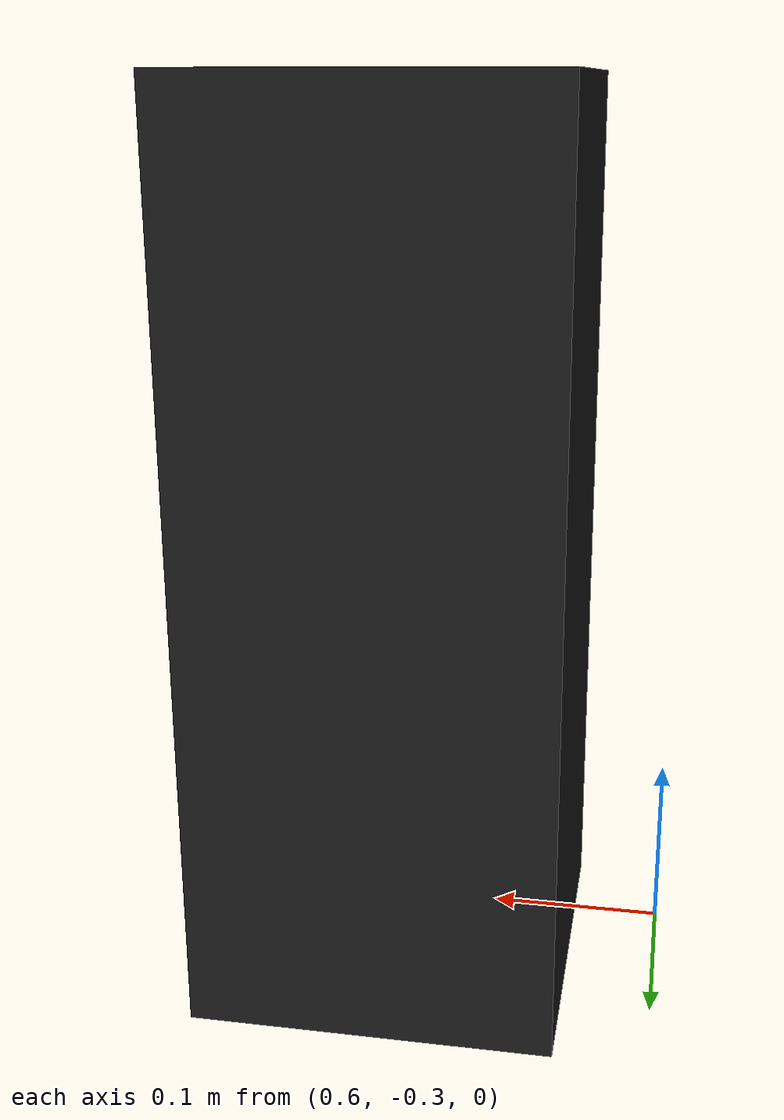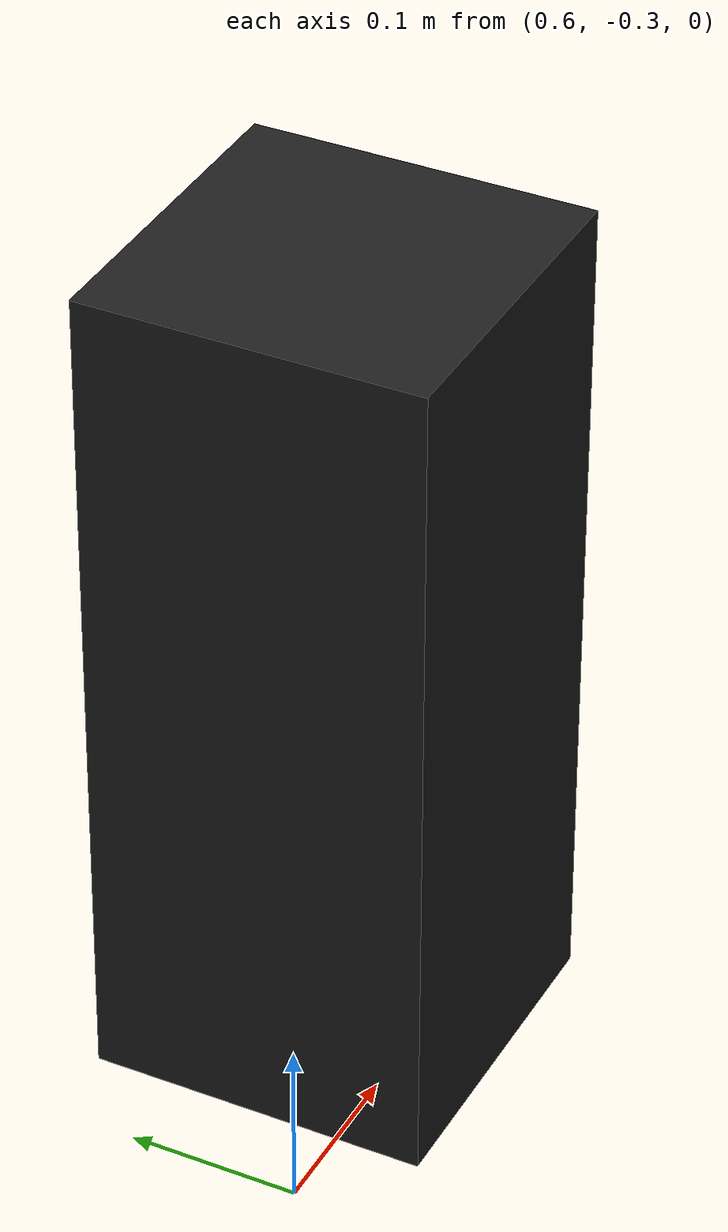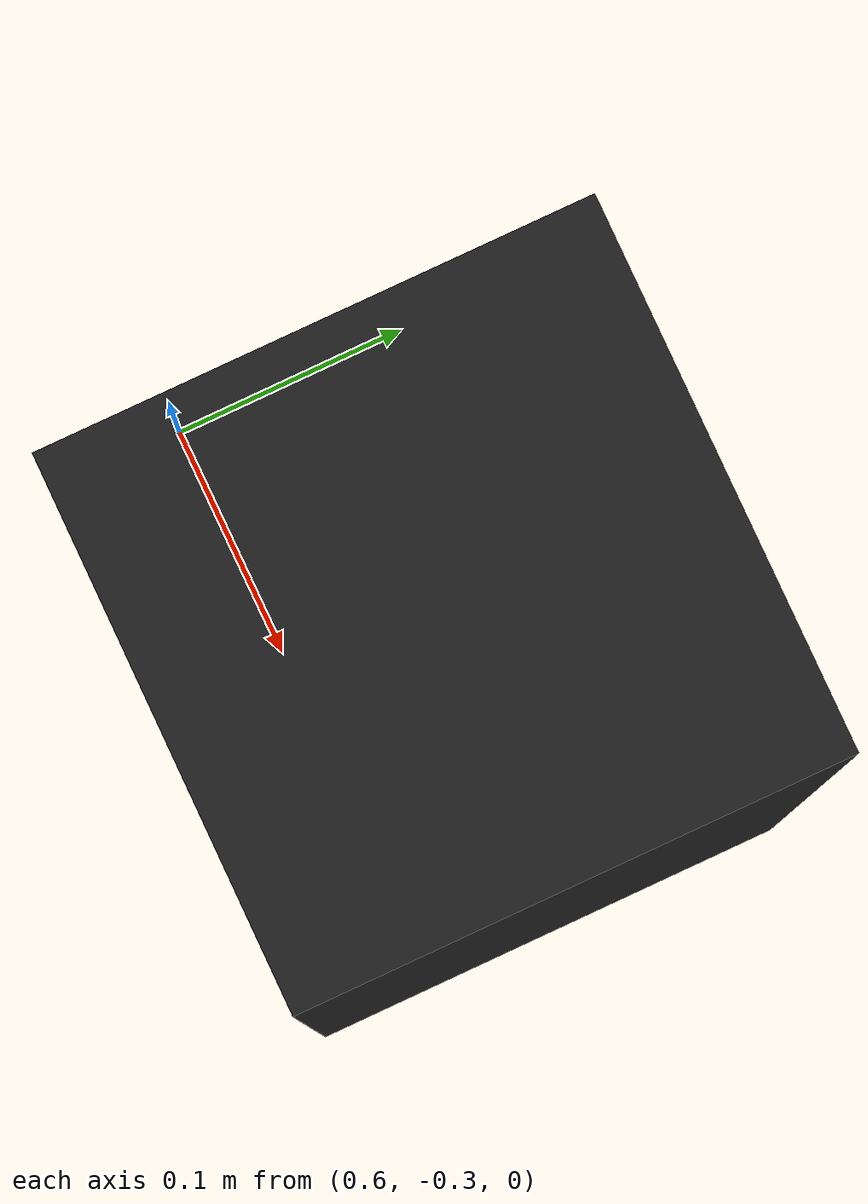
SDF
<?xml version="1.0"?>
<sdf version="1.5">
  <model name="obstacle_box">
    <static>true</static>
    <link name="link">
      <inertial>
        <pose>0.75 -0.25 0.25 0 0 0</pose>
        <mass>0.5</mass>
      </inertial>
      <collision name="collision">
        <pose>0.75 -0.25 0.25 0 0 0</pose>
        <geometry>
          <box>
            <size>0.2 0.2 0.5</size>
          </box>
        </geometry>
        <surface>
          <friction>
            <ode>
              <mu>100</mu>
              <mu2>50</mu2>
            </ode>
          </friction>
        </surface>
      </collision>
      <visual name="visual">
        <pose>0.75 -0.25 0.25 0 0 0</pose>
        <geometry>
          <box>
            <size>0.2 0.2 0.5</size>
          </box>
        </geometry>
        <material>
          <script>
            <uri>file://media/materials/scripts/gazebo.material</uri>
            <name>Gazebo/Black</name>
          </script>
        </material>
      </visual>
    </link>
  </model>
</sdf>
